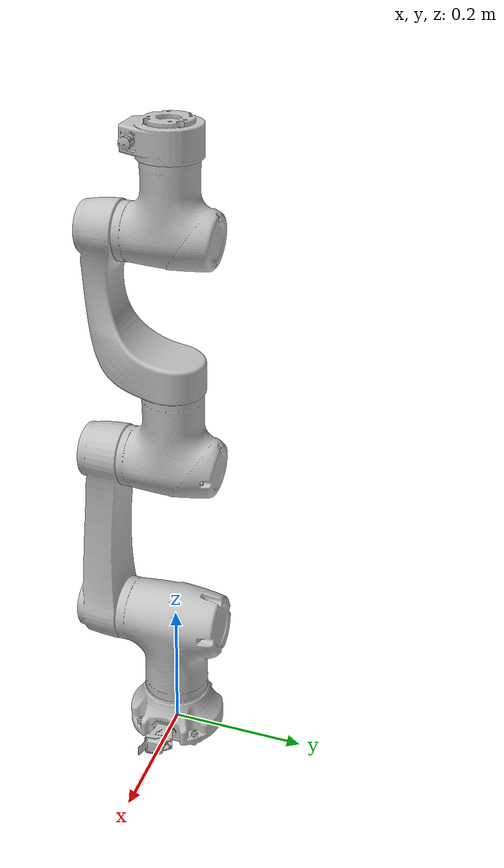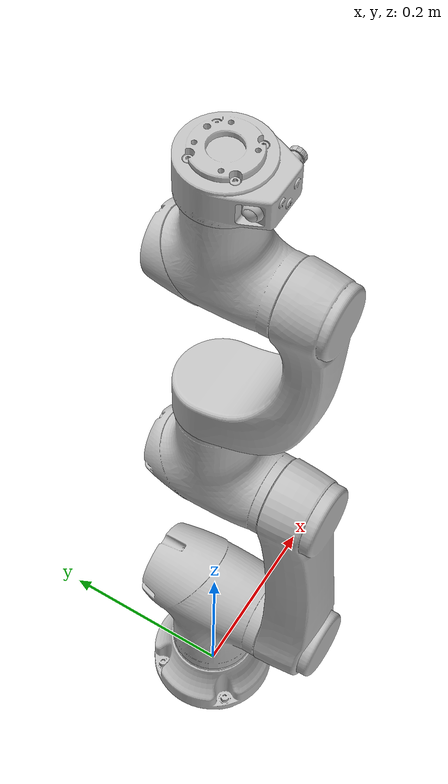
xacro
<?xml version="1.0"?>

<robot name="elfin3" xmlns:xacro="http://wiki.ros.org/xacro">

  <xacro:arg name="use_real_hardware" default="true" />
  <xacro:arg name="use_fake_hardware" default="false" />

  <!-- Load TRANSMISSION file: -->
  <xacro:include filename="$(find elfin3_ros2_gazebo)/urdf/elfin3_transmission.xacro" />
  <!-- Load GAZEBO/ROS2_CONTROL file: -->
  <xacro:include filename="$(find elfin3_ros2_gazebo)/urdf/elfin3_gazebo.xacro" />

  <xacro:property name="PI" value="3.1415926535897931"/>

  <xacro:property name="density" value="3.09"/>

    <!-- TRANSMISSION: -->
    <xacro:elfin3_transmission />
    <!-- GAZEBO - ROS2_CONTROL: -->
    <xacro:elfin3_gazebo
    use_real_hardware="$(arg use_real_hardware)"
    use_fake_hardware="$(arg use_fake_hardware)"/>

  <link name="world"/>

  <joint name="world_base" type="fixed">
    <origin
      xyz="0 0 0"
      rpy="0 0 -1.5708" />
    <parent
      link="world" />
    <child
      link="elfin_base_link" />
  </joint>

  <link name="elfin_base_link"/>

  <joint name="elfin_base_joint" type="fixed">
    <origin
      xyz="0 0 0"
      rpy="0 0 ${PI/2}" />
    <parent
      link="elfin_base_link" />
    <child
      link="elfin_base" />
  </joint>

 <link
    name="elfin_base">
    <inertial>
      <origin
        xyz="-0.000275485599623296 7.59034702891735E-06 0.0267651528589008"
        rpy="0 0 0" />
      <mass
        value="0.72845607167878" />
      <inertia
        ixx="0.000970397629421624"
        ixy="3.62553999566498E-08"
        ixz="-1.47235460345842E-05"
        iyy="0.00088280791320513"
        iyz="-5.96416765248803E-08"
        izz="0.00145846071899871" />
    </inertial>
    <visual>
      <origin
        xyz="0 0 0"
        rpy="0 0 0" />
      <geometry>
        <mesh
          filename="file://$(find elfin_description)/meshes/elfin3/elfin_base.STL" />
      </geometry>
      <material
        name="">
        <color
          rgba="0.752941176470588 0.752941176470588 0.752941176470588 1" />
      </material>
    </visual>
    <collision>
      <origin
        xyz="0 0 0"
        rpy="0 0 0" />
      <geometry>
        <mesh
          filename="file://$(find elfin_description)/meshes/elfin3/elfin_base.STL" />
      </geometry>
    </collision>
  </link>
  <link
    name="elfin_link1">
    <inertial>
      <origin
        xyz="-8.21073597005758E-06 -0.00385592915185279 -0.0289077735119297"
        rpy="0 0 0" />
      <mass
        value="1.97896448691555" />
      <inertia
        ixx="0.00494086819051033"
        ixy="-8.33960181407241E-07"
        ixz="-1.92976118088366E-07"
        iyy="0.00497296140216295"
        iyz="0.000702662850451301"
        izz="0.00253801272928108" />
    </inertial>
    <visual>
      <origin
        xyz="0 0 0"
        rpy="0 0 0" />
      <geometry>
        <mesh
          filename="file://$(find elfin_description)/meshes/elfin3/elfin_link1.STL" />
      </geometry>
      <material
        name="">
        <color
          rgba="0.752941176470588 0.752941176470588 0.752941176470588 1" />
      </material>
    </visual>
    <collision>
      <origin
        xyz="0 0 0"
        rpy="0 0 0" />
      <geometry>
        <mesh
          filename="file://$(find elfin_description)/meshes/elfin3/elfin_link1.STL" />
      </geometry>
    </collision>
  </link>
  <joint
    name="elfin_joint1"
    type="revolute">
    <origin
      xyz="0 0 0.1925"
      rpy="0 0 0" />
    <parent
      link="elfin_base" />
    <child
      link="elfin_link1" />
    <axis
      xyz="0 0 1" />
    <limit
      lower="-3.14"
      upper="3.14"
      effort="104"
      velocity="1.57" />
  </joint>
  <link
    name="elfin_link2">
    <inertial>
      <origin
        xyz="-1.22565268329047E-05 0.122777737373448 0.107534195375146"
        rpy="0 0 0" />
      <mass
        value="1.33352205550548" />
      <inertia
        ixx="0.0115890392637474"
        ixy="2.47639007244137E-06"
        ixz="-1.30890011076328E-07"
        iyy="0.000874262499109599"
        iyz="0.000516659498705417"
        izz="0.011961985959806" />
    </inertial>
    <visual>
      <origin
        xyz="0 0 0"
        rpy="0 0 0" />
      <geometry>
        <mesh
          filename="file://$(find elfin_description)/meshes/elfin3/elfin_link2.STL" />
      </geometry>
      <material
        name="">
        <color
          rgba="0.752941176470588 0.752941176470588 0.752941176470588 1" />
      </material>
    </visual>
    <collision>
      <origin
        xyz="0 0 0"
        rpy="0 0 0" />
      <geometry>
        <mesh
          filename="file://$(find elfin_description)/meshes/elfin3/elfin_link2.STL" />
      </geometry>
    </collision>
  </link>
  <joint
    name="elfin_joint2"
    type="revolute">
    <origin
      xyz="0 0 0"
      rpy="1.5708 0 0" />
    <parent
      link="elfin_link1" />
    <child
      link="elfin_link2" />
    <axis
      xyz="0 0 1" />
    <limit
      lower="-2.35"
      upper="2.35"
      effort="104"
      velocity="1.27" />
  </joint>
  <link
    name="elfin_link3">
    <inertial>
      <origin
        xyz="0.0262387072096018 5.37032356590368E-06 -0.00343411598992478"
        rpy="0 0 0" />
      <mass
        value="1.39255453302632" />
      <inertia
        ixx="0.00182232495604372"
        ixy="-2.21089945706923E-07"
        ixz="-0.000639319273814959"
        iyy="0.00336261407979077"
        iyz="-5.59683408816016E-07"
        izz="0.00292731816720469" />
    </inertial>
    <visual>
      <origin
        xyz="0 0 0"
        rpy="0 0 0" />
      <geometry>
        <mesh
          filename="file://$(find elfin_description)/meshes/elfin3/elfin_link3.STL" />
      </geometry>
      <material
        name="">
        <color
          rgba="0.752941176470588 0.752941176470588 0.752941176470588 1" />
      </material>
    </visual>
    <collision>
      <origin
        xyz="0 0 0"
        rpy="0 0 0" />
      <geometry>
        <mesh
          filename="file://$(find elfin_description)/meshes/elfin3/elfin_link3.STL" />
      </geometry>
    </collision>
  </link>
  <joint
    name="elfin_joint3"
    type="revolute">
    <origin
      xyz="0 0.266 0"
      rpy="3.1416 0 1.5708" />
    <parent
      link="elfin_link2" />
    <child
      link="elfin_link3" />
    <axis
      xyz="0 0 1" />
    <limit
      lower="-2.61"
      upper="2.61"
      effort="69"
      velocity="1.57" />
  </joint>
  <link
    name="elfin_link4">
    <inertial>
      <origin
        xyz="1.95216712881586E-06 -0.0600119802928945 0.203829262782307"
        rpy="0 0 0" />
      <mass
        value="1.01776198349465" />
      <inertia
        ixx="0.00655093186907594"
        ixy="3.55081363876865E-08"
        ixz="-4.08511113453618E-09"
        iyy="0.00535736774588744"
        iyz="0.00190350389406001"
        izz="0.00209832030530978" />
    </inertial>
    <visual>
      <origin
        xyz="0 0 0"
        rpy="0 0 0" />
      <geometry>
        <mesh
          filename="file://$(find elfin_description)/meshes/elfin3/elfin_link4.STL" />
      </geometry>
      <material
        name="">
        <color
          rgba="0.752941176470588 0.752941176470588 0.752941176470588 1" />
      </material>
    </visual>
    <collision>
      <origin
        xyz="0 0 0"
        rpy="0 0 0" />
      <geometry>
        <mesh
          filename="file://$(find elfin_description)/meshes/elfin3/elfin_link4.STL" />
      </geometry>
    </collision>
  </link>
  <joint
    name="elfin_joint4"
    type="revolute">
    <origin
      xyz="0 0 0"
      rpy="1.5708 0 1.5708" />
    <parent
      link="elfin_link3" />
    <child
      link="elfin_link4" />
    <axis
      xyz="0 0 1" />
    <limit
      lower="-3.14"
      upper="3.14"
      effort="69"
      velocity="1.57" />
  </joint>
  <link
    name="elfin_link5">
    <inertial>
      <origin
        xyz="-1.05001687024882E-06 -0.0219935503542705 -0.00313939561517204"
        rpy="0 0 0" />
      <mass
        value="1.18717980160834" />
      <inertia
        ixx="0.00223607657277947"
        ixy="7.69537054662417E-08"
        ixz="1.87222209603133E-07"
        iyy="0.00135159843091726"
        iyz="0.000420977804470428"
        izz="0.0019323649715964" />
    </inertial>
    <visual>
      <origin
        xyz="0 0 0"
        rpy="0 0 0" />
      <geometry>
        <mesh
          filename="file://$(find elfin_description)/meshes/elfin3/elfin_link5.STL" />
      </geometry>
      <material
        name="">
        <color
          rgba="0.752941176470588 0.752941176470588 0.752941176470588 1" />
      </material>
    </visual>
    <collision>
      <origin
        xyz="0 0 0"
        rpy="0 0 0" />
      <geometry>
        <mesh
          filename="file://$(find elfin_description)/meshes/elfin3/elfin_link5.STL" />
      </geometry>
    </collision>
  </link>
  <joint
    name="elfin_joint5"
    type="revolute">
    <origin
      xyz="0 0 0.324"
      rpy="-1.5708 0 0" />
    <parent
      link="elfin_link4" />
    <child
      link="elfin_link5" />
    <axis
      xyz="0 0 1" />
    <limit
      lower="-2.56"
      upper="2.56"
      effort="34"
      velocity="1.57" />
  </joint>
  <link
    name="elfin_link6">
    <inertial>
      <origin
        xyz="0.000198862802720535 -0.00258691380873893 0.122731964516512"
        rpy="0 0 0" />
      <mass
        value="0.227303500730531" />
      <inertia
        ixx="0.000125000763469258"
        ixy="-2.55243441789671E-07"
        ixz="6.94596839566468E-09"
        iyy="0.000130554222076413"
        iyz="1.8489071637173E-07"
        izz="0.000203787958721634" />
    </inertial>
    <visual>
      <origin
        xyz="0 0 0"
        rpy="0 0 0" />
      <geometry>
        <mesh
          filename="file://$(find elfin_description)/meshes/elfin3/elfin_link6.STL" />
      </geometry>
      <material
        name="">
        <color
          rgba="0.752941176470588 0.752941176470588 0.752941176470588 1" />
      </material>
    </visual>
    <collision>
      <origin
        xyz="0 0 0"
        rpy="0 0 0" />
      <geometry>
        <mesh
          filename="file://$(find elfin_description)/meshes/elfin3/elfin_link6.STL" />
      </geometry>
    </collision>
  </link>
  <joint
    name="elfin_joint6"
    type="revolute">
    <origin
      xyz="0 0 0"
      rpy="1.5708 0 0" />
    <parent
      link="elfin_link5" />
    <child
      link="elfin_link6" />
    <axis
      xyz="0 0 1" />
    <limit
      lower="-3.14"
      upper="3.14"
      effort="34"
      velocity="1.57" />
  </joint>
  <link
    name="elfin_end_link">
  </link>
  <joint
    name="elfin_end_joint"
    type="fixed">
    <origin
      xyz="0 0 0.146"
      rpy="0 0 0" />
    <parent
      link="elfin_link6" />
    <child
      link="elfin_end_link" />
    <axis
      xyz="0 0 0" />
  </joint>

  <link name="elfin_dummy_gripper"/>

  <joint name="elfin_dummy_joint" type="fixed">
    <origin
      xyz="0 -0.111 0"
      rpy="${PI/2} ${-PI/2} 0" />
    <parent
      link="elfin_link6" />
    <child
      link="elfin_dummy_gripper" />
  </joint>

</robot>
